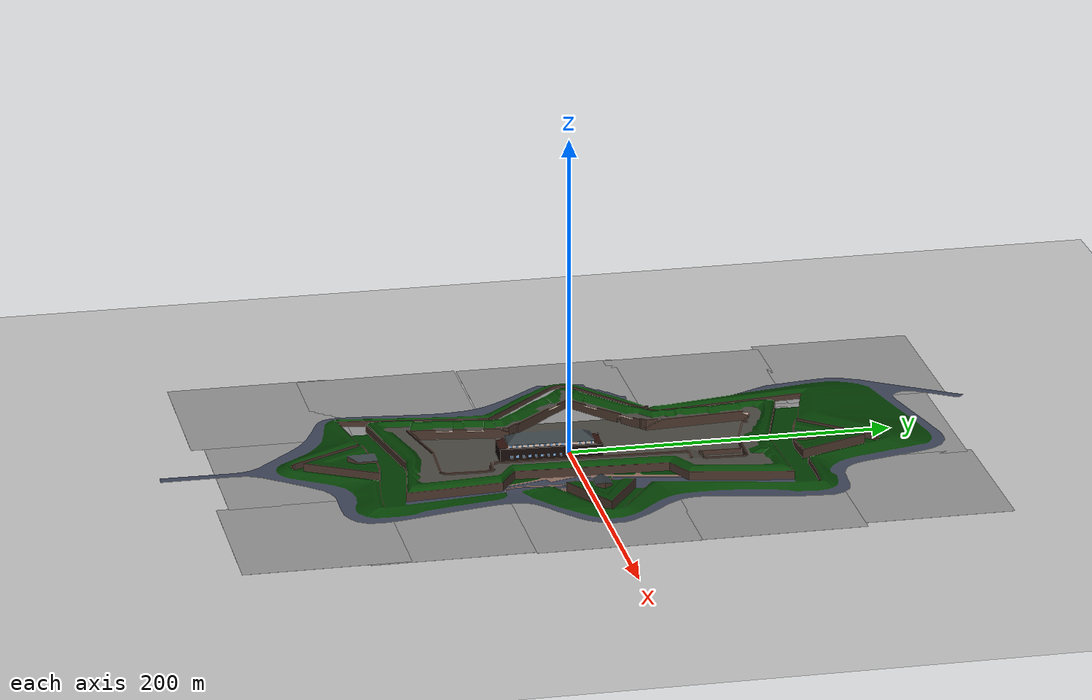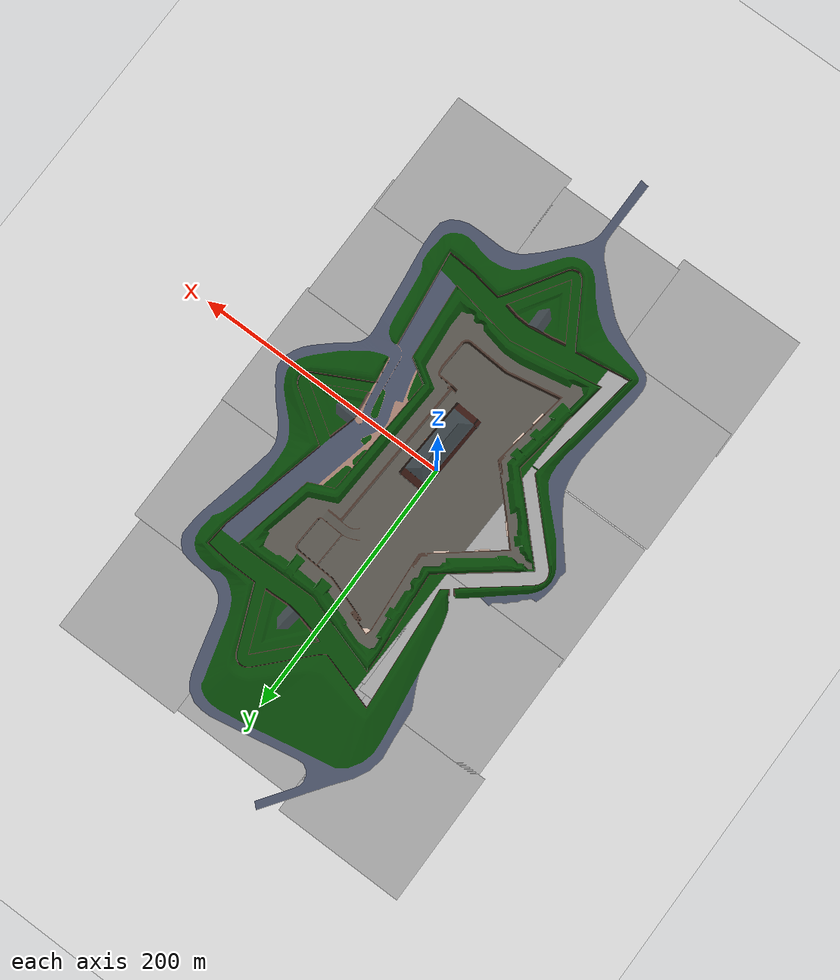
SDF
<sdf version="1.4">
 <world name="default">
  <light name="sun" type="directional">
   <pose>0 0 10 0 -0 0</pose>
   <diffuse>0.8 0.8 0.8 1</diffuse>
   <specular>0.2 0.2 0.2 1</specular>
   <attenuation>
    <range>1000</range>
    <constant>0.9</constant>
    <linear>0.01</linear>
    <quadratic>0.001</quadratic>
   </attenuation>
   <direction>-0.5 0.1 -0.9</direction>
  </light>
  <model name="ground_plane">
   <static>1</static>
   <link name="link">
    <collision name="collision">
     <geometry><plane><normal>0 0 1</normal><size>100 100</size></plane></geometry>
     <surface><friction><ode><mu>100</mu><mu2>50</mu2></ode></friction></surface>
    </collision>
    <visual name="visual">
     <cast_shadows>0</cast_shadows>
     <geometry><plane><normal>0 0 1</normal><size>100 100</size></plane></geometry>
     <material>
      <script><uri>file://media/materials/scripts/gazebo.material</uri><name>Gazebo/Grey</name></script>
     </material>
    </visual>
    <velocity_decay><linear>0</linear><angular>0</angular></velocity_decay>
   </link>
  </model>
  <model name="my_mesh">
   <pose>206.279 -279.901 8.2 1.54 5.55112e-17 1.54</pose>
   <static>1</static>
   <link name="body">
    <collision name="collision">
     <geometry>
      <mesh>
       <uri>file:///home/rohan/work_workspace/src/Simulator/spiri_description/meshes/Citadel_Test2.dae</uri>
      </mesh>
     </geometry>
    </collision>
    <visual name="visual">
     <geometry>
      <mesh>
       <uri>file:///home/rohan/work_workspace/src/Simulator/spiri_description/meshes/Citadel_Test2.dae</uri>
      </mesh>
     </geometry>
    </visual>
    <velocity_decay><linear>0</linear><angular>0</angular></velocity_decay>
   </link>
  </model>
  <model name="ground_plane">
   <static>1</static>
   <link name="link">
    <collision name="collision">
     <geometry><plane><normal>0 0 1</normal><size>100 100</size></plane></geometry>
     <surface><friction><ode><mu>100</mu><mu2>50</mu2></ode></friction></surface>
    </collision>
    <visual name="visual">
     <cast_shadows>0</cast_shadows>
     <geometry><plane><normal>0 0 1</normal><size>100 100</size></plane></geometry>
     <material>
      <script><uri>file://media/materials/scripts/gazebo.material</uri><name>Gazebo/Grey</name></script>
     </material>
    </visual>
    <velocity_decay><linear>0</linear><angular>0</angular></velocity_decay>
   </link>
  </model>
  <physics type="ode">
   <max_step_size>0.001</max_step_size>
   <real_time_factor>1</real_time_factor>
   <real_time_update_rate>1000</real_time_update_rate>
   <gravity>0 0 -9.8</gravity>
  </physics>
  <scene><ambient>0.4 0.4 0.4 1</ambient><background>0.7 0.7 0.7 1</background><shadows>1</shadows></scene>
  <model name="ground_plane_0">
   <static>1</static>
   <link name="link">
    <collision name="collision">
     <geometry><plane><normal>0 0 1</normal><size>100 100</size></plane></geometry>
     <surface><friction><ode><mu>100</mu><mu2>50</mu2></ode></friction></surface>
    </collision>
    <visual name="visual">
     <cast_shadows>0</cast_shadows>
     <geometry><plane><normal>0 0 1</normal><size>100 100</size></plane></geometry>
     <material>
      <script><uri>file://media/materials/scripts/gazebo.material</uri><name>Gazebo/Grey</name></script>
     </material>
    </visual>
    <velocity_decay><linear>0</linear><angular>0</angular></velocity_decay>
   </link>
   <pose>-0.432424 -100 0 0 -0 0</pose>
  </model>
  <model name="ground_plane_1">
   <static>1</static>
   <link name="link">
    <collision name="collision">
     <geometry><plane><normal>0 0 1</normal><size>100 100</size></plane></geometry>
     <surface><friction><ode><mu>100</mu><mu2>50</mu2></ode></friction></surface>
    </collision>
    <visual name="visual">
     <cast_shadows>0</cast_shadows>
     <geometry><plane><normal>0 0 1</normal><size>100 100</size></plane></geometry>
     <material>
      <script><uri>file://media/materials/scripts/gazebo.material</uri><name>Gazebo/Grey</name></script>
     </material>
    </visual>
    <velocity_decay><linear>0</linear><angular>0</angular></velocity_decay>
   </link>
   <pose>100 0 0 0 -0 0</pose>
  </model>
  <model name="ground_plane_2">
   <static>1</static>
   <link name="link">
    <collision name="collision">
     <geometry><plane><normal>0 0 1</normal><size>100 100</size></plane></geometry>
     <surface><friction><ode><mu>100</mu><mu2>50</mu2></ode></friction></surface>
    </collision>
    <visual name="visual">
     <cast_shadows>0</cast_shadows>
     <geometry><plane><normal>0 0 1</normal><size>100 100</size></plane></geometry>
     <material>
      <script><uri>file://media/materials/scripts/gazebo.material</uri><name>Gazebo/Grey</name></script>
     </material>
    </visual>
    <velocity_decay><linear>0</linear><angular>0</angular></velocity_decay>
   </link>
   <pose>98.4083 -98 0 0 -0 0</pose>
  </model>
  <model name="ground_plane_3">
   <static>1</static>
   <link name="link">
    <collision name="collision">
     <geometry><plane><normal>0 0 1</normal><size>100 100</size></plane></geometry>
     <surface><friction><ode><mu>100</mu><mu2>50</mu2></ode></friction></surface>
    </collision>
    <visual name="visual">
     <cast_shadows>0</cast_shadows>
     <geometry><plane><normal>0 0 1</normal><size>100 100</size></plane></geometry>
     <material>
      <script><uri>file://media/materials/scripts/gazebo.material</uri><name>Gazebo/Grey</name></script>
     </material>
    </visual>
    <velocity_decay><linear>0</linear><angular>0</angular></velocity_decay>
   </link>
   <pose>99.5649 99 0 0 -0 0</pose>
  </model>
  <model name="ground_plane_4">
   <static>1</static>
   <link name="link">
    <collision name="collision">
     <geometry><plane><normal>0 0 1</normal><size>100 100</size></plane></geometry>
     <surface><friction><ode><mu>100</mu><mu2>50</mu2></ode></friction></surface>
    </collision>
    <visual name="visual">
     <cast_shadows>0</cast_shadows>
     <geometry><plane><normal>0 0 1</normal><size>100 100</size></plane></geometry>
     <material>
      <script><uri>file://media/materials/scripts/gazebo.material</uri><name>Gazebo/Grey</name></script>
     </material>
    </visual>
    <velocity_decay><linear>0</linear><angular>0</angular></velocity_decay>
   </link>
   <pose>2 97 0 0 -0 0</pose>
  </model>
  <model name="ground_plane_5">
   <static>1</static>
   <link name="link">
    <collision name="collision">
     <geometry><plane><normal>0 0 1</normal><size>100 100</size></plane></geometry>
     <surface><friction><ode><mu>100</mu><mu2>50</mu2></ode></friction></surface>
    </collision>
    <visual name="visual">
     <cast_shadows>0</cast_shadows>
     <geometry><plane><normal>0 0 1</normal><size>100 100</size></plane></geometry>
     <material>
      <script><uri>file://media/materials/scripts/gazebo.material</uri><name>Gazebo/Grey</name></script>
     </material>
    </visual>
    <velocity_decay><linear>0</linear><angular>0</angular></velocity_decay>
   </link>
   <pose>-97 102 0 0 -0 0</pose>
  </model>
  <model name="ground_plane_6">
   <static>1</static>
   <link name="link">
    <collision name="collision">
     <geometry><plane><normal>0 0 1</normal><size>100 100</size></plane></geometry>
     <surface><friction><ode><mu>100</mu><mu2>50</mu2></ode></friction></surface>
    </collision>
    <visual name="visual">
     <cast_shadows>0</cast_shadows>
     <geometry><plane><normal>0 0 1</normal><size>100 100</size></plane></geometry>
     <material>
      <script><uri>file://media/materials/scripts/gazebo.material</uri><name>Gazebo/Grey</name></script>
     </material>
    </visual>
    <velocity_decay><linear>0</linear><angular>0</angular></velocity_decay>
   </link>
   <pose>-98 8 0 0 -0 0</pose>
  </model>
  <model name="ground_plane_7">
   <static>1</static>
   <link name="link">
    <collision name="collision">
     <geometry><plane><normal>0 0 1</normal><size>100 100</size></plane></geometry>
     <surface><friction><ode><mu>100</mu><mu2>50</mu2></ode></friction></surface>
    </collision>
    <visual name="visual">
     <cast_shadows>0</cast_shadows>
     <geometry><plane><normal>0 0 1</normal><size>100 100</size></plane></geometry>
     <material>
      <script><uri>file://media/materials/scripts/gazebo.material</uri><name>Gazebo/Grey</name></script>
     </material>
    </visual>
    <velocity_decay><linear>0</linear><angular>0</angular></velocity_decay>
   </link>
   <pose>-99 -93 0 0 -0 0</pose>
  </model>
  <model name="ground_plane_8">
   <static>1</static>
   <link name="link">
    <collision name="collision">
     <geometry><plane><normal>0 0 1</normal><size>100 100</size></plane></geometry>
     <surface><friction><ode><mu>100</mu><mu2>50</mu2></ode></friction></surface>
    </collision>
    <visual name="visual">
     <cast_shadows>0</cast_shadows>
     <geometry><plane><normal>0 0 1</normal><size>100 100</size></plane></geometry>
     <material>
      <script><uri>file://media/materials/scripts/gazebo.material</uri><name>Gazebo/Grey</name></script>
     </material>
    </visual>
    <velocity_decay><linear>0</linear><angular>0</angular></velocity_decay>
   </link>
   <pose>-2 -166 0 0 -0 0</pose>
  </model>
  <model name="ground_plane_9">
   <static>1</static>
   <link name="link">
    <collision name="collision">
     <geometry><plane><normal>0 0 1</normal><size>100 100</size></plane></geometry>
     <surface><friction><ode><mu>100</mu><mu2>50</mu2></ode></friction></surface>
    </collision>
    <visual name="visual">
     <cast_shadows>0</cast_shadows>
     <geometry><plane><normal>0 0 1</normal><size>100 100</size></plane></geometry>
     <material>
      <script><uri>file://media/materials/scripts/gazebo.material</uri><name>Gazebo/Grey</name></script>
     </material>
    </visual>
    <velocity_decay><linear>0</linear><angular>0</angular></velocity_decay>
   </link>
   <pose>-100 -174 0 0 -0 0</pose>
  </model>
  <model name="ground_plane_10">
   <static>1</static>
   <link name="link">
    <collision name="collision">
     <geometry><plane><normal>0 0 1</normal><size>100 100</size></plane></geometry>
     <surface><friction><ode><mu>100</mu><mu2>50</mu2></ode></friction></surface>
    </collision>
    <visual name="visual">
     <cast_shadows>0</cast_shadows>
     <geometry><plane><normal>0 0 1</normal><size>100 100</size></plane></geometry>
     <material>
      <script><uri>file://media/materials/scripts/gazebo.material</uri><name>Gazebo/Grey</name></script>
     </material>
    </visual>
    <velocity_decay><linear>0</linear><angular>0</angular></velocity_decay>
   </link>
   <pose>97 -173.54 0 0 -0 0</pose>
  </model>
  <model name="ground_plane_11">
   <static>1</static>
   <link name="link">
    <collision name="collision">
     <geometry><plane><normal>0 0 1</normal><size>100 100</size></plane></geometry>
     <surface><friction><ode><mu>100</mu><mu2>50</mu2></ode></friction></surface>
    </collision>
    <visual name="visual">
     <cast_shadows>0</cast_shadows>
     <geometry><plane><normal>0 0 1</normal><size>100 100</size></plane></geometry>
     <material>
      <script><uri>file://media/materials/scripts/gazebo.material</uri><name>Gazebo/Grey</name></script>
     </material>
    </visual>
    <velocity_decay><linear>0</linear><angular>0</angular></velocity_decay>
   </link>
   <pose>-3 187 0 0 -0 0</pose>
  </model>
  <model name="ground_plane_12">
   <static>1</static>
   <link name="link">
    <collision name="collision">
     <geometry><plane><normal>0 0 1</normal><size>100 100</size></plane></geometry>
     <surface><friction><ode><mu>100</mu><mu2>50</mu2></ode></friction></surface>
    </collision>
    <visual name="visual">
     <cast_shadows>0</cast_shadows>
     <geometry><plane><normal>0 0 1</normal><size>100 100</size></plane></geometry>
     <material>
      <script><uri>file://media/materials/scripts/gazebo.material</uri><name>Gazebo/Grey</name></script>
     </material>
    </visual>
    <velocity_decay><linear>0</linear><angular>0</angular></velocity_decay>
   </link>
   <pose>-102 199 0 0 -0 0</pose>
  </model>
  <model name="ground_plane_13">
   <static>1</static>
   <link name="link">
    <collision name="collision">
     <geometry><plane><normal>0 0 1</normal><size>100 100</size></plane></geometry>
     <surface><friction><ode><mu>100</mu><mu2>50</mu2></ode></friction></surface>
    </collision>
    <visual name="visual">
     <cast_shadows>0</cast_shadows>
     <geometry><plane><normal>0 0 1</normal><size>100 100</size></plane></geometry>
     <material>
      <script><uri>file://media/materials/scripts/gazebo.material</uri><name>Gazebo/Grey</name></script>
     </material>
    </visual>
    <velocity_decay><linear>0</linear><angular>0</angular></velocity_decay>
   </link>
   <pose>94 190 0 0 -0 0</pose>
  </model>
 </world>
</sdf>
